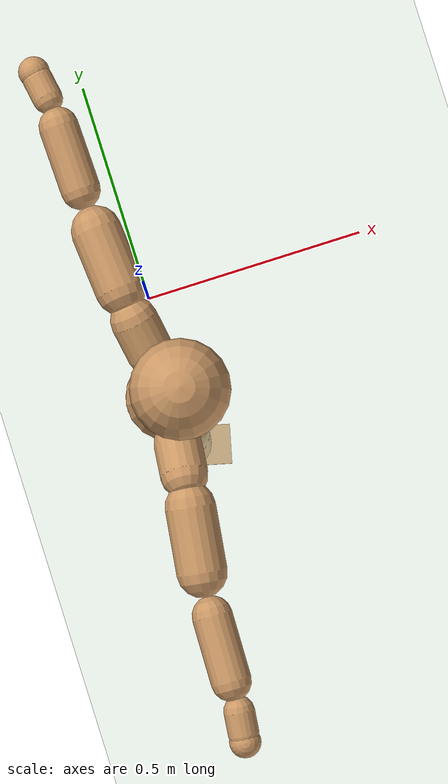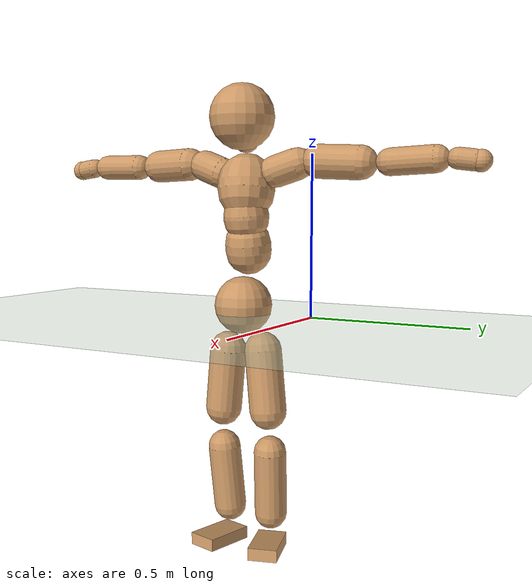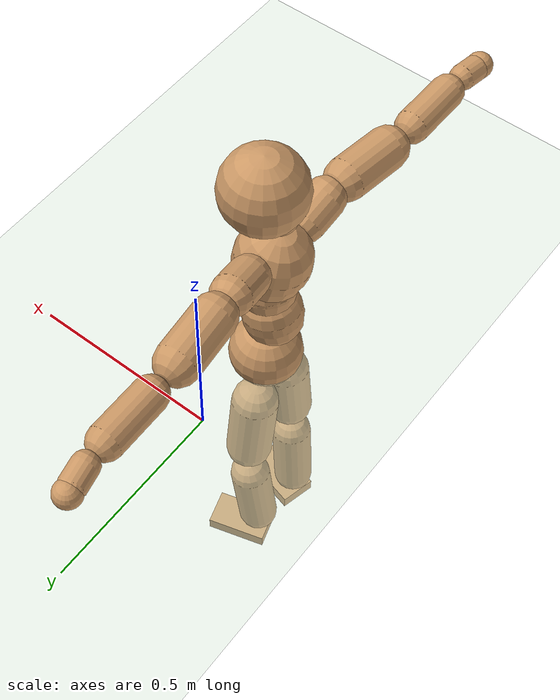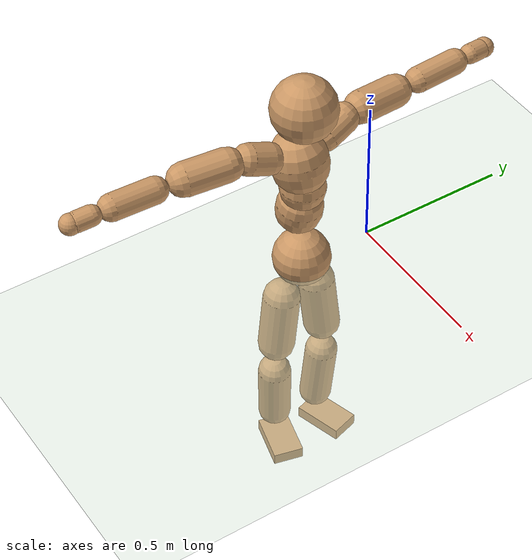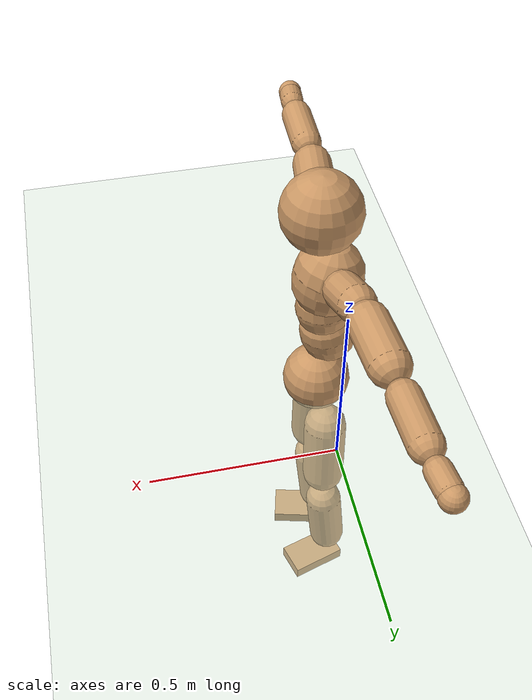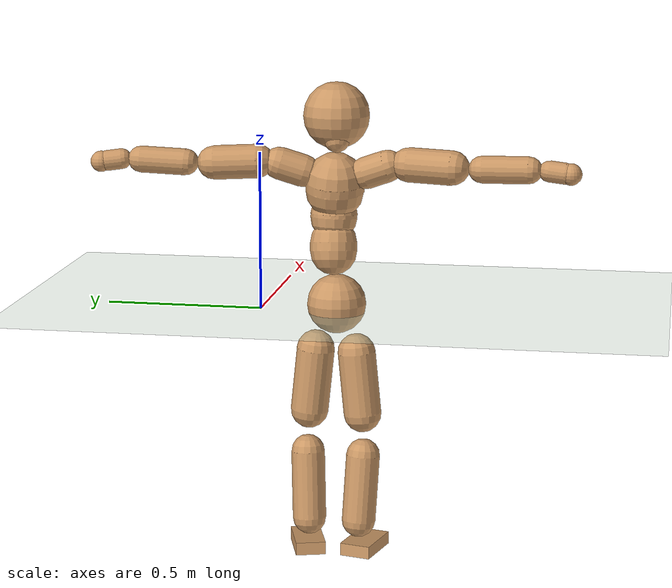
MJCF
<mujoco model="humanoid">
  <compiler coordinate="local"/>
  <default>
    <joint damping="0.0" armature="0.01" stiffness="0.0" limited="true"/>
    <geom conaffinity="1" condim="3" contype="7" margin="0.001" rgba="0.8 0.6 .4 1"/>
  </default>
  <asset>
    <texture type="skybox" builtin="gradient" rgb1=".4 .5 .6" rgb2="0 0 0" width="100" height="100"/>
    <texture builtin="flat" height="1278" mark="cross" markrgb="1 1 1" name="texgeom" random="0.01" rgb1="0.8 0.6 0.4" rgb2="0.8 0.6 0.4" type="cube" width="127"/>
    <texture builtin="checker" height="100" name="texplane" rgb1="0 0 0" rgb2="0.8 0.8 0.8" type="2d" width="100"/>
    <material name="MatPlane" reflectance="0.5" shininess="1" specular="1" texrepeat="60 60" texture="texplane"/>
    <material name="geom" texture="texgeom" texuniform="true"/>
  </asset>
  <worldbody>
    <light cutoff="100" diffuse="1 1 1" dir="-0 0 -1.3" directional="true" exponent="1" pos="0 0 1.3" specular=".1 .1 .1"/>
    <geom conaffinity="1" condim="3" name="floor" pos="0 0 0" rgba="0.8 0.9 0.8 1" size="100 100 .2" type="plane" material="MatPlane"/>
    <body name="Pelvis" pos="-0.0023 -0.2444 0.0254">
      <freejoint name="Pelvis"/>
      <geom type="sphere" contype="1" conaffinity="1" density="500" size="0.0938" pos="0.0000 0.0000 0.0000" name="Pelvis"/>
      <body name="L_Hip" pos="-0.0174 0.0572 -0.0789">
        <joint name="L_Hip_x" type="hinge" pos="0 0 0" axis="1 0 0" stiffness="800" damping="80" armature="0.02" range="-180.0000 180.0000"/>
        <joint name="L_Hip_y" type="hinge" pos="0 0 0" axis="0 1 0" stiffness="800" damping="80" armature="0.02" range="-180.0000 180.0000"/>
        <joint name="L_Hip_z" type="hinge" pos="0 0 0" axis="0 0 1" stiffness="800" damping="80" armature="0.02" range="-180.0000 180.0000"/>
        <geom type="capsule" contype="1" conaffinity="1" density="500" fromto="0.0012 0.0070 -0.0669 0.0047 0.0278 -0.2677" size="0.0605" name="L_Hip"/>
        <body name="L_Knee" pos="0.0059 0.0348 -0.3346">
          <joint name="L_Knee_x" type="hinge" pos="0 0 0" axis="1 0 0" stiffness="800" damping="80" armature="0.02" range="-180.0000 180.0000"/>
          <joint name="L_Knee_y" type="hinge" pos="0 0 0" axis="0 1 0" stiffness="800" damping="80" armature="0.02" range="-180.0000 180.0000"/>
          <joint name="L_Knee_z" type="hinge" pos="0 0 0" axis="0 0 1" stiffness="800" damping="80" armature="0.02" range="-180.0000 180.0000"/>
          <geom type="capsule" contype="1" conaffinity="1" density="500" fromto="-0.0073 -0.0028 -0.0719 -0.0291 -0.0111 -0.2876" size="0.0536" name="L_Knee"/>
          <body name="L_Ankle" pos="-0.0364 -0.0138 -0.3595">
            <joint name="L_Ankle_x" type="hinge" pos="0 0 0" axis="1 0 0" stiffness="800" damping="80" armature="0.02" range="-180.0000 180.0000"/>
            <joint name="L_Ankle_y" type="hinge" pos="0 0 0" axis="0 1 0" stiffness="800" damping="80" armature="0.02" range="-180.0000 180.0000"/>
            <joint name="L_Ankle_z" type="hinge" pos="0 0 0" axis="0 0 1" stiffness="800" damping="80" armature="0.02" range="-180.0000 180.0000"/>
            <geom type="box" contype="1" conaffinity="1" density="500" pos="0.0562 0.0166 -0.0263" size="0.0822 0.0479 0.0206" quat="0.9896 0.0000 0.0000 0.1435" name="L_Ankle"/>
            <body name="L_Toe" pos="0.1124 0.0333 -0.0527">
              <joint name="L_Toe_x" type="hinge" pos="0 0 0" axis="1 0 0" stiffness="500" damping="50" armature="0.02" range="-180.0000 180.0000"/>
              <joint name="L_Toe_y" type="hinge" pos="0 0 0" axis="0 1 0" stiffness="500" damping="50" armature="0.02" range="-180.0000 180.0000"/>
              <joint name="L_Toe_z" type="hinge" pos="0 0 0" axis="0 0 1" stiffness="500" damping="50" armature="0.02" range="-180.0000 180.0000"/>
              <geom type="box" contype="1" conaffinity="1" density="500" pos="0.0000 0.0000 0.0253" size="0.001 0.0024 0.001" quat="0.9888 0.0000 0.0000 0.1491" name="L_Toe"/>
            </body>
          </body>
        </body>
      </body>
      <body name="R_Hip" pos="-0.0128 -0.0598 -0.0866">
        <joint name="R_Hip_x" type="hinge" pos="0 0 0" axis="1 0 0" stiffness="800" damping="80" armature="0.02" range="-180.0000 180.0000"/>
        <joint name="R_Hip_y" type="hinge" pos="0 0 0" axis="0 1 0" stiffness="800" damping="80" armature="0.02" range="-180.0000 180.0000"/>
        <joint name="R_Hip_z" type="hinge" pos="0 0 0" axis="0 0 1" stiffness="800" damping="80" armature="0.02" range="-180.0000 180.0000"/>
        <geom type="capsule" contype="1" conaffinity="1" density="500" fromto="-0.0010 -0.0068 -0.0664 -0.0038 -0.0270 -0.2657" size="0.0602" name="R_Hip"/>
        <body name="R_Knee" pos="-0.0048 -0.0338 -0.3322">
          <joint name="R_Knee_x" type="hinge" pos="0 0 0" axis="1 0 0" stiffness="800" damping="80" armature="0.02" range="-180.0000 180.0000"/>
          <joint name="R_Knee_y" type="hinge" pos="0 0 0" axis="0 1 0" stiffness="800" damping="80" armature="0.02" range="-180.0000 180.0000"/>
          <joint name="R_Knee_z" type="hinge" pos="0 0 0" axis="0 0 1" stiffness="800" damping="80" armature="0.02" range="-180.0000 180.0000"/>
          <geom type="capsule" contype="1" conaffinity="1" density="500" fromto="-0.0067 0.0034 -0.0706 -0.0269 0.0136 -0.2823" size="0.0539" name="R_Knee"/>
          <body name="R_Ankle" pos="-0.0336 0.017 -0.3529">
            <joint name="R_Ankle_x" type="hinge" pos="0 0 0" axis="1 0 0" stiffness="800" damping="80" armature="0.02" range="-180.0000 180.0000"/>
            <joint name="R_Ankle_y" type="hinge" pos="0 0 0" axis="0 1 0" stiffness="800" damping="80" armature="0.02" range="-180.0000 180.0000"/>
            <joint name="R_Ankle_z" type="hinge" pos="0 0 0" axis="0 0 1" stiffness="800" damping="80" armature="0.02" range="-180.0000 180.0000"/>
            <geom type="box" contype="1" conaffinity="1" density="500" pos="0.0599 -0.0148 -0.0269" size="0.0832 0.05 0.0203" quat="0.9926 0.0000 0.0000 -0.1211" name="R_Ankle"/>
            <body name="R_Toe" pos="0.1197 -0.0297 -0.0539">
              <joint name="R_Toe_x" type="hinge" pos="0 0 0" axis="1 0 0" stiffness="500" damping="50" armature="0.02" range="-180.0000 180.0000"/>
              <joint name="R_Toe_y" type="hinge" pos="0 0 0" axis="0 1 0" stiffness="500" damping="50" armature="0.02" range="-180.0000 180.0000"/>
              <joint name="R_Toe_z" type="hinge" pos="0 0 0" axis="0 0 1" stiffness="500" damping="50" armature="0.02" range="-180.0000 180.0000"/>
              <geom type="box" contype="1" conaffinity="1" density="500" pos="0.0000 0.0000 0.0279" size="0.0011 0.0025 0.0011" quat="0.9938 0.0000 0.0000 -0.1115" name="R_Toe"/>
            </body>
          </body>
        </body>
      </body>
      <body name="Torso" pos="-0.0356 0.0038 0.1188">
        <joint name="Torso_x" type="hinge" pos="0 0 0" axis="1 0 0" stiffness="1000" damping="100" armature="0.02" range="-180.0000 180.0000"/>
        <joint name="Torso_y" type="hinge" pos="0 0 0" axis="0 1 0" stiffness="1000" damping="100" armature="0.02" range="-180.0000 180.0000"/>
        <joint name="Torso_z" type="hinge" pos="0 0 0" axis="0 0 1" stiffness="1000" damping="100" armature="0.02" range="-180.0000 180.0000"/>
        <geom type="capsule" contype="1" conaffinity="1" density="500" fromto="0.0162 0.0030 0.0821 0.0108 0.0020 0.0547" size="0.074586" name="Torso"/>
        <body name="Spine" pos="0.027 0.005 0.1368">
          <joint name="Spine_x" type="hinge" pos="0 0 0" axis="1 0 0" stiffness="1000" damping="100" armature="0.02" range="-180.0000 180.0000"/>
          <joint name="Spine_y" type="hinge" pos="0 0 0" axis="0 1 0" stiffness="1000" damping="100" armature="0.02" range="-180.0000 180.0000"/>
          <joint name="Spine_z" type="hinge" pos="0 0 0" axis="0 0 1" stiffness="1000" damping="100" armature="0.02" range="-180.0000 180.0000"/>
          <geom type="capsule" contype="1" conaffinity="1" density="500" fromto="0.0030 -0.0010 0.0333 0.0020 -0.0007 0.0222" size="0.07347" name="Spine"/>
          <body name="Chest" pos="0.0049 -0.0017 0.0555">
            <joint name="Chest_x" type="hinge" pos="0 0 0" axis="1 0 0" stiffness="1000" damping="100" armature="0.02" range="-180.0000 180.0000"/>
            <joint name="Chest_y" type="hinge" pos="0 0 0" axis="0 1 0" stiffness="1000" damping="100" armature="0.02" range="-180.0000 180.0000"/>
            <joint name="Chest_z" type="hinge" pos="0 0 0" axis="0 0 1" stiffness="1000" damping="100" armature="0.02" range="-180.0000 180.0000"/>
            <geom type="capsule" contype="1" conaffinity="1" density="500" fromto="-0.0156 -0.0052 0.0823 -0.0104 -0.0035 0.0549" size="0.092163" name="Chest"/>
            <body name="Neck" pos="-0.0354 -0.0138 0.1996">
              <joint name="Neck_x" type="hinge" pos="0 0 0" axis="1 0 0" stiffness="500" damping="50" armature="0.02" range="-180.0000 180.0000"/>
              <joint name="Neck_y" type="hinge" pos="0 0 0" axis="0 1 0" stiffness="500" damping="50" armature="0.02" range="-180.0000 180.0000"/>
              <joint name="Neck_z" type="hinge" pos="0 0 0" axis="0 0 1" stiffness="500" damping="50" armature="0.02" range="-180.0000 180.0000"/>
              <geom type="capsule" contype="1" conaffinity="1" density="500" fromto="0.0097 0.0019 0.0172 0.0388 0.0075 0.0688" size="0.041571" name="Neck"/>
              <body name="Head" pos="0.0484 0.0094 0.0861">
                <joint name="Head_x" type="hinge" pos="0 0 0" axis="1 0 0" stiffness="500" damping="50" armature="0.02" range="-180.0000 180.0000"/>
                <joint name="Head_y" type="hinge" pos="0 0 0" axis="0 1 0" stiffness="500" damping="50" armature="0.02" range="-180.0000 180.0000"/>
                <joint name="Head_z" type="hinge" pos="0 0 0" axis="0 0 1" stiffness="500" damping="50" armature="0.02" range="-180.0000 180.0000"/>
                <geom type="sphere" contype="1" conaffinity="1" density="500" size="0.1044" pos="0.0000 0.0000 0.0000" name="Head"/>
              </body>
            </body>
            <body name="L_Thorax" pos="-0.0185 0.0692 0.1064">
              <joint name="L_Thorax_x" type="hinge" pos="0 0 0" axis="1 0 0" stiffness="500" damping="50" armature="0.02" range="-180.0000 180.0000"/>
              <joint name="L_Thorax_y" type="hinge" pos="0 0 0" axis="0 1 0" stiffness="500" damping="50" armature="0.02" range="-180.0000 180.0000"/>
              <joint name="L_Thorax_z" type="hinge" pos="0 0 0" axis="0 0 1" stiffness="500" damping="50" armature="0.02" range="-180.0000 180.0000"/>
              <geom type="capsule" contype="1" conaffinity="1" density="500" fromto="-0.0042 0.0245 0.0080 -0.0168 0.0979 0.0319" size="0.0507" name="L_Thorax"/>
              <body name="L_Shoulder" pos="-0.021 0.1223 0.0399">
                <joint name="L_Shoulder_x" type="hinge" pos="0 0 0" axis="1 0 0" stiffness="500" damping="50" armature="0.02" range="-720.0000 720.0000"/>
                <joint name="L_Shoulder_y" type="hinge" pos="0 0 0" axis="0 1 0" stiffness="500" damping="50" armature="0.02" range="-720.0000 720.0000"/>
                <joint name="L_Shoulder_z" type="hinge" pos="0 0 0" axis="0 0 1" stiffness="500" damping="50" armature="0.02" range="-720.0000 720.0000"/>
                <geom type="capsule" contype="1" conaffinity="1" density="500" fromto="-0.0039 0.0446 -0.0020 -0.0155 0.1785 -0.0082" size="0.0533" name="L_Shoulder"/>
                <body name="L_Elbow" pos="-0.0194 0.2231 -0.0102">
                  <joint name="L_Elbow_x" type="hinge" pos="0 0 0" axis="1 0 0" stiffness="500" damping="50" armature="0.02" range="-720.0000 720.0000"/>
                  <joint name="L_Elbow_y" type="hinge" pos="0 0 0" axis="0 1 0" stiffness="500" damping="50" armature="0.02" range="-720.0000 720.0000"/>
                  <joint name="L_Elbow_z" type="hinge" pos="0 0 0" axis="0 0 1" stiffness="500" damping="50" armature="0.02" range="-720.0000 720.0000"/>
                  <geom type="capsule" contype="1" conaffinity="1" density="500" fromto="-0.0014 0.0467 0.0020 -0.0057 0.1868 0.0079" size="0.0418" name="L_Elbow"/>
                  <body name="L_Wrist" pos="-0.0071 0.2335 0.0099">
                    <joint name="L_Wrist_x" type="hinge" pos="0 0 0" axis="1 0 0" stiffness="300" damping="30" armature="0.02" range="-180.0000 180.0000"/>
                    <joint name="L_Wrist_y" type="hinge" pos="0 0 0" axis="0 1 0" stiffness="300" damping="30" armature="0.02" range="-180.0000 180.0000"/>
                    <joint name="L_Wrist_z" type="hinge" pos="0 0 0" axis="0 0 1" stiffness="300" damping="30" armature="0.02" range="-180.0000 180.0000"/>
                    <geom type="capsule" contype="1" conaffinity="1" density="500" fromto="-0.0028 0.0159 -0.0020 -0.0111 0.0637 -0.0080" size="0.032" name="L_Wrist"/>
                    <body name="L_Hand" pos="-0.0139 0.0796 -0.01">
                      <joint name="L_Hand_x" type="hinge" pos="0 0 0" axis="1 0 0" stiffness="300" damping="30" armature="0.02" range="-180.0000 180.0000"/>
                      <joint name="L_Hand_y" type="hinge" pos="0 0 0" axis="0 1 0" stiffness="300" damping="30" armature="0.02" range="-180.0000 180.0000"/>
                      <joint name="L_Hand_z" type="hinge" pos="0 0 0" axis="0 0 1" stiffness="300" damping="30" armature="0.02" range="-180.0000 180.0000"/>
                      <geom type="sphere" contype="1" conaffinity="1" density="500" size="0.0329" pos="0.0000 0.0000 0.0000" name="L_Hand"/>
                    </body>
                  </body>
                </body>
              </body>
            </body>
            <body name="R_Thorax" pos="-0.0238 -0.0814 0.1054">
              <joint name="R_Thorax_x" type="hinge" pos="0 0 0" axis="1 0 0" stiffness="500" damping="50" armature="0.02" range="-180.0000 180.0000"/>
              <joint name="R_Thorax_y" type="hinge" pos="0 0 0" axis="0 1 0" stiffness="500" damping="50" armature="0.02" range="-180.0000 180.0000"/>
              <joint name="R_Thorax_z" type="hinge" pos="0 0 0" axis="0 0 1" stiffness="500" damping="50" armature="0.02" range="-180.0000 180.0000"/>
              <geom type="capsule" contype="1" conaffinity="1" density="500" fromto="-0.0021 -0.0224 0.0082 -0.0083 -0.0895 0.0326" size="0.0506" name="R_Thorax"/>
              <body name="R_Shoulder" pos="-0.0104 -0.1118 0.0408">
                <joint name="R_Shoulder_x" type="hinge" pos="0 0 0" axis="1 0 0" stiffness="500" damping="50" armature="0.02" range="-720.0000 720.0000"/>
                <joint name="R_Shoulder_y" type="hinge" pos="0 0 0" axis="0 1 0" stiffness="500" damping="50" armature="0.02" range="-720.0000 720.0000"/>
                <joint name="R_Shoulder_z" type="hinge" pos="0 0 0" axis="0 0 1" stiffness="500" damping="50" armature="0.02" range="-720.0000 720.0000"/>
                <geom type="capsule" contype="1" conaffinity="1" density="500" fromto="-0.0059 -0.0454 -0.0013 -0.0236 -0.1818 -0.0051" size="0.0537" name="R_Shoulder"/>
                <body name="R_Elbow" pos="-0.0295 -0.2272 -0.0063">
                  <joint name="R_Elbow_x" type="hinge" pos="0 0 0" axis="1 0 0" stiffness="500" damping="50" armature="0.02" range="-720.0000 720.0000"/>
                  <joint name="R_Elbow_y" type="hinge" pos="0 0 0" axis="0 1 0" stiffness="500" damping="50" armature="0.02" range="-720.0000 720.0000"/>
                  <joint name="R_Elbow_z" type="hinge" pos="0 0 0" axis="0 0 1" stiffness="500" damping="50" armature="0.02" range="-720.0000 720.0000"/>
                  <geom type="capsule" contype="1" conaffinity="1" density="500" fromto="-0.0010 -0.0471 0.0006 -0.0039 -0.1882 0.0025" size="0.0425" name="R_Elbow"/>
                  <body name="R_Wrist" pos="-0.0049 -0.2353 0.0031">
                    <joint name="R_Wrist_x" type="hinge" pos="0 0 0" axis="1 0 0" stiffness="300" damping="30" armature="0.02" range="-180.0000 180.0000"/>
                    <joint name="R_Wrist_y" type="hinge" pos="0 0 0" axis="0 1 0" stiffness="300" damping="30" armature="0.02" range="-180.0000 180.0000"/>
                    <joint name="R_Wrist_z" type="hinge" pos="0 0 0" axis="0 0 1" stiffness="300" damping="30" armature="0.02" range="-180.0000 180.0000"/>
                    <geom type="capsule" contype="1" conaffinity="1" density="500" fromto="-0.0018 -0.0164 -0.0016 -0.0072 -0.0654 -0.0065" size="0.0328" name="R_Wrist"/>
                    <body name="R_Hand" pos="-0.009 -0.0818 -0.0081">
                      <joint name="R_Hand_x" type="hinge" pos="0 0 0" axis="1 0 0" stiffness="300" damping="30" armature="0.02" range="-180.0000 180.0000"/>
                      <joint name="R_Hand_y" type="hinge" pos="0 0 0" axis="0 1 0" stiffness="300" damping="30" armature="0.02" range="-180.0000 180.0000"/>
                      <joint name="R_Hand_z" type="hinge" pos="0 0 0" axis="0 0 1" stiffness="300" damping="30" armature="0.02" range="-180.0000 180.0000"/>
                      <geom type="sphere" contype="1" conaffinity="1" density="500" size="0.0335" pos="0.0000 0.0000 0.0000" name="R_Hand"/>
                    </body>
                  </body>
                </body>
              </body>
            </body>
          </body>
        </body>
      </body>
    </body>
  </worldbody>
  <actuator>
    <motor name="L_Hip_x" joint="L_Hip_x" gear="500"/>
    <motor name="L_Hip_y" joint="L_Hip_y" gear="500"/>
    <motor name="L_Hip_z" joint="L_Hip_z" gear="500"/>
    <motor name="L_Knee_x" joint="L_Knee_x" gear="500"/>
    <motor name="L_Knee_y" joint="L_Knee_y" gear="500"/>
    <motor name="L_Knee_z" joint="L_Knee_z" gear="500"/>
    <motor name="L_Ankle_x" joint="L_Ankle_x" gear="500"/>
    <motor name="L_Ankle_y" joint="L_Ankle_y" gear="500"/>
    <motor name="L_Ankle_z" joint="L_Ankle_z" gear="500"/>
    <motor name="L_Toe_x" joint="L_Toe_x" gear="500"/>
    <motor name="L_Toe_y" joint="L_Toe_y" gear="500"/>
    <motor name="L_Toe_z" joint="L_Toe_z" gear="500"/>
    <motor name="R_Hip_x" joint="R_Hip_x" gear="500"/>
    <motor name="R_Hip_y" joint="R_Hip_y" gear="500"/>
    <motor name="R_Hip_z" joint="R_Hip_z" gear="500"/>
    <motor name="R_Knee_x" joint="R_Knee_x" gear="500"/>
    <motor name="R_Knee_y" joint="R_Knee_y" gear="500"/>
    <motor name="R_Knee_z" joint="R_Knee_z" gear="500"/>
    <motor name="R_Ankle_x" joint="R_Ankle_x" gear="500"/>
    <motor name="R_Ankle_y" joint="R_Ankle_y" gear="500"/>
    <motor name="R_Ankle_z" joint="R_Ankle_z" gear="500"/>
    <motor name="R_Toe_x" joint="R_Toe_x" gear="500"/>
    <motor name="R_Toe_y" joint="R_Toe_y" gear="500"/>
    <motor name="R_Toe_z" joint="R_Toe_z" gear="500"/>
    <motor name="Torso_x" joint="Torso_x" gear="500"/>
    <motor name="Torso_y" joint="Torso_y" gear="500"/>
    <motor name="Torso_z" joint="Torso_z" gear="500"/>
    <motor name="Spine_x" joint="Spine_x" gear="500"/>
    <motor name="Spine_y" joint="Spine_y" gear="500"/>
    <motor name="Spine_z" joint="Spine_z" gear="500"/>
    <motor name="Chest_x" joint="Chest_x" gear="500"/>
    <motor name="Chest_y" joint="Chest_y" gear="500"/>
    <motor name="Chest_z" joint="Chest_z" gear="500"/>
    <motor name="Neck_x" joint="Neck_x" gear="500"/>
    <motor name="Neck_y" joint="Neck_y" gear="500"/>
    <motor name="Neck_z" joint="Neck_z" gear="500"/>
    <motor name="Head_x" joint="Head_x" gear="500"/>
    <motor name="Head_y" joint="Head_y" gear="500"/>
    <motor name="Head_z" joint="Head_z" gear="500"/>
    <motor name="L_Thorax_x" joint="L_Thorax_x" gear="500"/>
    <motor name="L_Thorax_y" joint="L_Thorax_y" gear="500"/>
    <motor name="L_Thorax_z" joint="L_Thorax_z" gear="500"/>
    <motor name="L_Shoulder_x" joint="L_Shoulder_x" gear="500"/>
    <motor name="L_Shoulder_y" joint="L_Shoulder_y" gear="500"/>
    <motor name="L_Shoulder_z" joint="L_Shoulder_z" gear="500"/>
    <motor name="L_Elbow_x" joint="L_Elbow_x" gear="500"/>
    <motor name="L_Elbow_y" joint="L_Elbow_y" gear="500"/>
    <motor name="L_Elbow_z" joint="L_Elbow_z" gear="500"/>
    <motor name="L_Wrist_x" joint="L_Wrist_x" gear="500"/>
    <motor name="L_Wrist_y" joint="L_Wrist_y" gear="500"/>
    <motor name="L_Wrist_z" joint="L_Wrist_z" gear="500"/>
    <motor name="L_Hand_x" joint="L_Hand_x" gear="500"/>
    <motor name="L_Hand_y" joint="L_Hand_y" gear="500"/>
    <motor name="L_Hand_z" joint="L_Hand_z" gear="500"/>
    <motor name="R_Thorax_x" joint="R_Thorax_x" gear="500"/>
    <motor name="R_Thorax_y" joint="R_Thorax_y" gear="500"/>
    <motor name="R_Thorax_z" joint="R_Thorax_z" gear="500"/>
    <motor name="R_Shoulder_x" joint="R_Shoulder_x" gear="500"/>
    <motor name="R_Shoulder_y" joint="R_Shoulder_y" gear="500"/>
    <motor name="R_Shoulder_z" joint="R_Shoulder_z" gear="500"/>
    <motor name="R_Elbow_x" joint="R_Elbow_x" gear="500"/>
    <motor name="R_Elbow_y" joint="R_Elbow_y" gear="500"/>
    <motor name="R_Elbow_z" joint="R_Elbow_z" gear="500"/>
    <motor name="R_Wrist_x" joint="R_Wrist_x" gear="500"/>
    <motor name="R_Wrist_y" joint="R_Wrist_y" gear="500"/>
    <motor name="R_Wrist_z" joint="R_Wrist_z" gear="500"/>
    <motor name="R_Hand_x" joint="R_Hand_x" gear="500"/>
    <motor name="R_Hand_y" joint="R_Hand_y" gear="500"/>
    <motor name="R_Hand_z" joint="R_Hand_z" gear="500"/>
  </actuator>
  <contact>
    <exclude body1="Torso" body2="Chest"/>
    <exclude body1="Head" body2="Chest"/>
    <exclude body1="R_Knee" body2="R_Toe"/>
    <exclude body1="R_Knee" body2="L_Ankle"/>
    <exclude body1="R_Knee" body2="L_Toe"/>
    <exclude body1="L_Knee" body2="L_Toe"/>
    <exclude body1="L_Knee" body2="R_Ankle"/>
    <exclude body1="L_Knee" body2="R_Toe"/>
    <exclude body1="L_Shoulder" body2="Chest"/>
    <exclude body1="R_Shoulder" body2="Chest"/>
  </contact>
  <sensor/>
  <size njmax="700" nconmax="700"/>
</mujoco>
